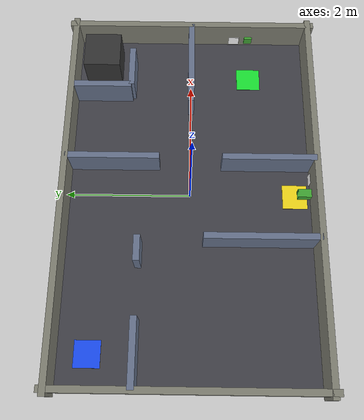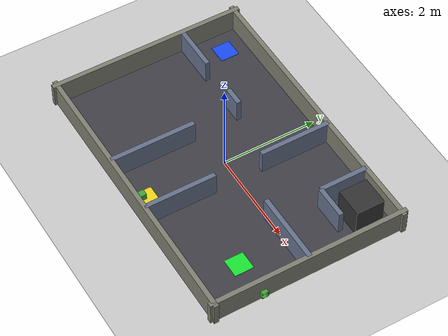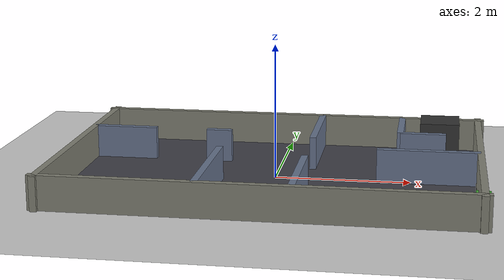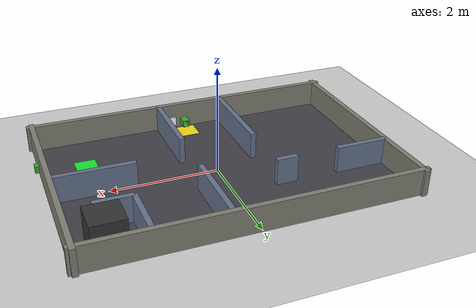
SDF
<?xml version="1.0"?>
<sdf version="1.6">
  <world name="default">
    <plugin filename="gz-sim-physics-system" name="gz::sim::systems::Physics"/>
    <plugin filename="gz-sim-user-commands-system" name="gz::sim::systems::UserCommands"/>
    <plugin filename="gz-sim-scene-broadcaster-system" name="gz::sim::systems::SceneBroadcaster"/>
    <plugin filename="gz-sim-sensors-system" name="gz::sim::systems::Sensors">
      <render_engine>ogre2</render_engine>
    </plugin>
    <plugin filename="gz-sim-imu-system" name="gz::sim::systems::Imu"/>

    <include>
      <uri>https://fuel.gazebosim.org/1.0/OpenRobotics/models/Ground Plane</uri>
    </include>
    <include>
      <uri>https://fuel.gazebosim.org/1.0/OpenRobotics/models/Sun</uri>
    </include>

    <gui fullscreen='0'>
      <camera name='user_camera'>
        <pose>0 0 12 0 1.5708 0</pose>
        <view_controller>orbit</view_controller>
      </camera>
    </gui>

    <physics type="ode">
      <real_time_update_rate>1000.0</real_time_update_rate>
      <max_step_size>0.001</max_step_size>
      <real_time_factor>1</real_time_factor>
      <ode>
        <solver>
          <type>quick</type>
          <iters>150</iters>
          <sor>1.4</sor>
          <use_dynamic_moi_rescaling>1</use_dynamic_moi_rescaling>
        </solver>
      </ode>
    </physics>

    <!-- Template Maze with Objectives — CDE2310                      -->
    <!-- Arena: 6m x 4m                                               -->
    <!-- Robot spawns top-left (-2.5, 1.5)                            -->
    <!-- Top-down view (S=start, G=end, #=wall):                      -->
    <!--  |  START       |           #       |  SHELF  |              -->
    <!--  |   S          |           #       | Obj C   |              -->
    <!--  | UNKNOWN  #    . . . . .  #  . . . . . . .  |              -->
    <!--  |  ZONE    #               ############ EAST |              -->
    <!--  |  ObjAB   #    . . . . .   . ObjAB . . . . |              -->
    <!--  |    ######+               #  BONUS END      |              -->
    <!--  |          |      END      #                 |              -->
    <!--  |          |    (NO BONUS) #                 |              -->

    <!-- Floor -->
    <model name="maze_floor">
      <static>true</static>
      <link name="link">
        <visual name="vis">
          <pose>0 0 0.001 0 0 0</pose>
          <geometry><box><size>6 4 0.002</size></box></geometry>
          <material>
            <ambient>0.25 0.25 0.28 1</ambient>
            <diffuse>0.25 0.25 0.28 1</diffuse>
          </material>
        </visual>
      </link>
    </model>

    <!-- ==================== OUTER WALLS ==================== -->
    <model name="outer_n">
      <static>true</static>
      <link name="link">
        <pose>0 2.0 0.25 0 0 0</pose>
        <collision name="col"><geometry><box><size>6.2 0.1 0.5</size></box></geometry></collision>
        <visual name="vis"><geometry><box><size>6.2 0.1 0.5</size></box></geometry>
          <material><ambient>0.5 0.5 0.45 1</ambient><diffuse>0.5 0.5 0.45 1</diffuse></material>
        </visual>
      </link>
    </model>
    <model name="outer_s">
      <static>true</static>
      <link name="link">
        <pose>0 -2.0 0.25 0 0 0</pose>
        <collision name="col"><geometry><box><size>6.2 0.1 0.5</size></box></geometry></collision>
        <visual name="vis"><geometry><box><size>6.2 0.1 0.5</size></box></geometry>
          <material><ambient>0.5 0.5 0.45 1</ambient><diffuse>0.5 0.5 0.45 1</diffuse></material>
        </visual>
      </link>
    </model>
    <model name="outer_e">
      <static>true</static>
      <link name="link">
        <pose>3.0 0 0.25 0 0 0</pose>
        <collision name="col"><geometry><box><size>0.1 4.2 0.5</size></box></geometry></collision>
        <visual name="vis"><geometry><box><size>0.1 4.2 0.5</size></box></geometry>
          <material><ambient>0.5 0.5 0.45 1</ambient><diffuse>0.5 0.5 0.45 1</diffuse></material>
        </visual>
      </link>
    </model>
    <model name="outer_w">
      <static>true</static>
      <link name="link">
        <pose>-3.0 0 0.25 0 0 0</pose>
        <collision name="col"><geometry><box><size>0.1 4.2 0.5</size></box></geometry></collision>
        <visual name="vis"><geometry><box><size>0.1 4.2 0.5</size></box></geometry>
          <material><ambient>0.5 0.5 0.45 1</ambient><diffuse>0.5 0.5 0.45 1</diffuse></material>
        </visual>
      </link>
    </model>

    <!-- ==================== STARTING AREA ==================== -->
    <!-- Partially enclosed pocket at top-left -->
    <!-- South wall of starting area (left segment) -->
    <model name="start_wall_s_left">
      <static>true</static>
      <link name="link">
        <pose>-2.5 0.8 0.25 0 0 0</pose>
        <collision name="c"><geometry><box><size>1.0 0.1 0.5</size></box></geometry></collision>
        <visual name="v"><geometry><box><size>1.0 0.1 0.5</size></box></geometry>
          <material><ambient>0.4 0.45 0.55 1</ambient><diffuse>0.4 0.45 0.55 1</diffuse></material>
        </visual>
      </link>
    </model>
    <!-- South wall of starting area (right segment, connects to unknown zone wall) -->
    <model name="start_wall_s_right">
      <static>true</static>
      <link name="link">
        <pose>-1.0 0.8 0.25 0 0 0</pose>
        <collision name="c"><geometry><box><size>0.4 0.1 0.5</size></box></geometry></collision>
        <visual name="v"><geometry><box><size>0.4 0.1 0.5</size></box></geometry>
          <material><ambient>0.4 0.45 0.55 1</ambient><diffuse>0.4 0.45 0.55 1</diffuse></material>
        </visual>
      </link>
    </model>
    <!-- 0.8m gap between x=-2.0 and x=-1.2 for robot to exit starting area -->

    <!-- ==================== UNKNOWN ZONE BOUNDARY ==================== -->
    <!-- Vertical wall forming east edge of unknown zone -->
    <!-- Lower section: y from -2.0 to -0.2 -->
    <model name="uz_wall_lower">
      <static>true</static>
      <link name="link">
        <pose>-0.8 -1.1 0.25 0 0 0</pose>
        <collision name="c"><geometry><box><size>0.1 1.8 0.5</size></box></geometry></collision>
        <visual name="v"><geometry><box><size>0.1 1.8 0.5</size></box></geometry>
          <material><ambient>0.4 0.45 0.55 1</ambient><diffuse>0.4 0.45 0.55 1</diffuse></material>
        </visual>
      </link>
    </model>
    <!-- Gap from y=-0.2 to y=0.8 (1.0m passage into/out of unknown zone) -->

    <!-- ==================== CENTRAL MAZE WALLS ==================== -->
    <!-- Vertical tab from north wall — forces detour -->
    <model name="tab_n">
      <static>true</static>
      <link name="link">
        <pose>0.5 1.25 0.25 0 0 0</pose>
        <collision name="c"><geometry><box><size>0.1 1.5 0.5</size></box></geometry></collision>
        <visual name="v"><geometry><box><size>0.1 1.5 0.5</size></box></geometry>
          <material><ambient>0.4 0.45 0.55 1</ambient><diffuse>0.4 0.45 0.55 1</diffuse></material>
        </visual>
      </link>
    </model>

    <!-- Vertical tab from south wall -->
    <model name="tab_s">
      <static>true</static>
      <link name="link">
        <pose>0.5 -1.25 0.25 0 0 0</pose>
        <collision name="c"><geometry><box><size>0.1 1.5 0.5</size></box></geometry></collision>
        <visual name="v"><geometry><box><size>0.1 1.5 0.5</size></box></geometry>
          <material><ambient>0.4 0.45 0.55 1</ambient><diffuse>0.4 0.45 0.55 1</diffuse></material>
        </visual>
      </link>
    </model>

    <!-- Horizontal tab from east wall — creates right-side corridor -->
    <model name="tab_e">
      <static>true</static>
      <link name="link">
        <pose>2.25 0.0 0.25 0 0 0</pose>
        <collision name="c"><geometry><box><size>1.5 0.1 0.5</size></box></geometry></collision>
        <visual name="v"><geometry><box><size>1.5 0.1 0.5</size></box></geometry>
          <material><ambient>0.4 0.45 0.55 1</ambient><diffuse>0.4 0.45 0.55 1</diffuse></material>
        </visual>
      </link>
    </model>

    <!-- ==================== SHELF AREA (upper right) ==================== -->
    <!-- Simplified shelf/rack structure for Mission Objective C -->
    <model name="shelf_west_wall">
      <static>true</static>
      <link name="link">
        <pose>1.8 1.5 0.25 0 0 0</pose>
        <collision name="c"><geometry><box><size>0.1 1.0 0.5</size></box></geometry></collision>
        <visual name="v"><geometry><box><size>0.1 1.0 0.5</size></box></geometry>
          <material><ambient>0.4 0.45 0.55 1</ambient><diffuse>0.4 0.45 0.55 1</diffuse></material>
        </visual>
      </link>
    </model>
    <model name="shelf_south_wall">
      <static>true</static>
      <link name="link">
        <pose>2.15 1.0 0.25 0 0 0</pose>
        <collision name="c"><geometry><box><size>0.7 0.1 0.5</size></box></geometry></collision>
        <visual name="v"><geometry><box><size>0.7 0.1 0.5</size></box></geometry>
          <material><ambient>0.4 0.45 0.55 1</ambient><diffuse>0.4 0.45 0.55 1</diffuse></material>
        </visual>
      </link>
    </model>
    <!-- Shelf rack visual (dark frame) -->
    <model name="shelf_rack">
      <static>true</static>
      <link name="link">
        <pose>2.4 1.5 0.3 0 0 0</pose>
        <visual name="shelf_base">
          <geometry><box><size>0.6 0.6 0.6</size></box></geometry>
          <material>
            <ambient>0.15 0.15 0.15 1</ambient>
            <diffuse>0.2 0.2 0.2 1</diffuse>
          </material>
        </visual>
        <collision name="shelf_col">
          <geometry><box><size>0.6 0.6 0.6</size></box></geometry>
        </collision>
      </link>
    </model>

    <!-- ==================== MARKERS ==================== -->
    <!-- Start (blue) — top-left pocket -->
    <model name="start_marker">
      <static>true</static>
      <link name="link">
        <pose>-2.5 1.5 0.005 0 0 0</pose>
        <visual name="vis">
          <geometry><box><size>0.4 0.4 0.01</size></box></geometry>
          <material>
            <ambient>0.1 0.3 0.9 1</ambient>
            <diffuse>0.1 0.3 0.95 1</diffuse>
          </material>
        </visual>
      </link>
    </model>

    <!-- End — no bonus (yellow) — bottom center -->
    <model name="end_no_bonus_marker">
      <static>true</static>
      <link name="link">
        <pose>0.0 -1.7 0.005 0 0 0</pose>
        <visual name="vis">
          <geometry><box><size>0.4 0.4 0.01</size></box></geometry>
          <material>
            <ambient>0.9 0.8 0.1 1</ambient>
            <diffuse>0.95 0.85 0.1 1</diffuse>
          </material>
        </visual>
      </link>
    </model>

    <!-- End — bonus (green) — right side -->
    <model name="end_bonus_marker">
      <static>true</static>
      <link name="link">
        <pose>2.2 -1.0 0.005 0 0 0</pose>
        <visual name="vis">
          <geometry><box><size>0.4 0.4 0.01</size></box></geometry>
          <material>
            <ambient>0.1 0.8 0.2 1</ambient>
            <diffuse>0.1 0.9 0.2 1</diffuse>
          </material>
        </visual>
      </link>
    </model>

    <!-- ==================== STATION A — south wall ==================== -->
    <!-- Milo tin on south wall, facing north (+Y) toward robot -->
    <!-- Wall inner face at y=-1.925 (wall center -2.0 + half thickness 0.075) -->
    <model name="station_a_milo">
      <static>true</static>
      <pose>0.0 -1.925 0.15 0 0 0</pose>
      <include>
        <uri>model://milo_tin</uri>
      </include>
    </model>
    <!-- ArUco marker for Station A, flat against south wall, facing north -->
    <model name="station_a_aruco">
      <static>true</static>
      <pose>0.25 -1.92 0.15 -1.5708 0 0</pose>
      <include>
        <uri>model://aruco_marker</uri>
      </include>
    </model>

    <!-- ==================== STATION B — east wall ==================== -->
    <!-- Milo tin on east wall, facing west (-X) toward robot -->
    <!-- Wall inner face at x=2.925 (wall center 3.0 - half thickness 0.075) -->
    <model name="station_b_milo">
      <static>true</static>
      <pose>2.925 -1.0 0.15 0 0 -1.5708</pose>
      <include>
        <uri>model://milo_tin</uri>
      </include>
    </model>
    <!-- ArUco marker for Station B, flat against east wall, facing west -->
    <model name="station_b_aruco">
      <static>true</static>
      <pose>2.92 -0.75 0.15 1.5708 0 -1.5708</pose>
      <include>
        <uri>model://aruco_marker</uri>
      </include>
    </model>

    <!-- Mission Objective C (red) — shelf area, upper right -->
    <model name="obj_c_marker">
      <static>true</static>
      <link name="link">
        <pose>2.4 1.5 0.005 0 0 0</pose>
        <visual name="vis">
          <geometry><box><size>0.4 0.4 0.01</size></box></geometry>
          <material>
            <ambient>0.9 0.1 0.1 1</ambient>
            <diffuse>0.95 0.1 0.1 1</diffuse>
          </material>
        </visual>
      </link>
    </model>

  </world>
</sdf>

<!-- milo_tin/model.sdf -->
<sdf version="1.6">
  <model name="milo_tin">
    <static>true</static>
    <link name="link">
      <visual name="visual">
        <geometry>
          <mesh>
            <uri>meshes/milo_tin.stl</uri>
            <scale>0.001 0.001 0.001</scale>
          </mesh>
        </geometry>
        <material>
          <ambient>0.2 0.6 0.15 1</ambient>
          <diffuse>0.25 0.65 0.2 1</diffuse>
          <specular>0.3 0.3 0.3 1</specular>
        </material>
      </visual>
      <collision name="collision">
        <geometry>
          <cylinder>
            <radius>0.0673</radius>
            <length>0.210</length>
          </cylinder>
        </geometry>
      </collision>
    </link>
  </model>
</sdf>

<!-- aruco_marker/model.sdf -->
<sdf version="1.6">
  <model name="aruco_marker">
    <static>true</static>
    <link name="link">
      <visual name="visual">
        <geometry>
          <box>
            <size>0.18 0.18 0.002</size>
          </box>
        </geometry>
        <material>
          <pbr>
            <metal>
              <albedo_map>materials/textures/aruco_42.png</albedo_map>
            </metal>
          </pbr>
          <ambient>1 1 1 1</ambient>
          <diffuse>1 1 1 1</diffuse>
        </material>
      </visual>
      <collision name="collision">
        <geometry>
          <box>
            <size>0.18 0.18 0.002</size>
          </box>
        </geometry>
      </collision>
    </link>
  </model>
</sdf>
